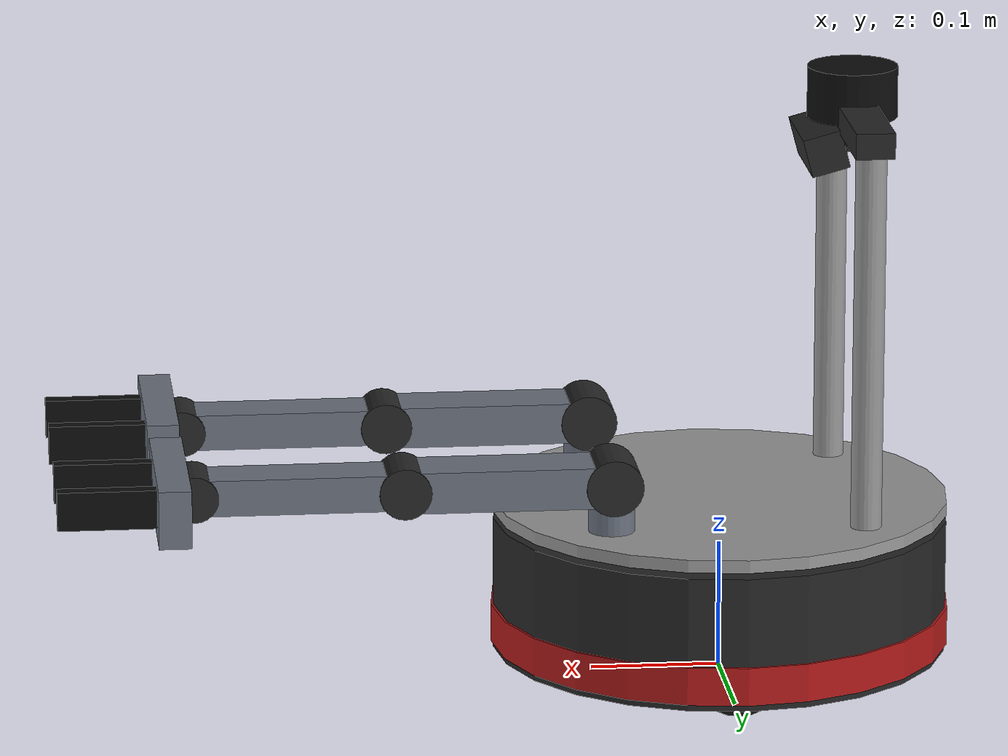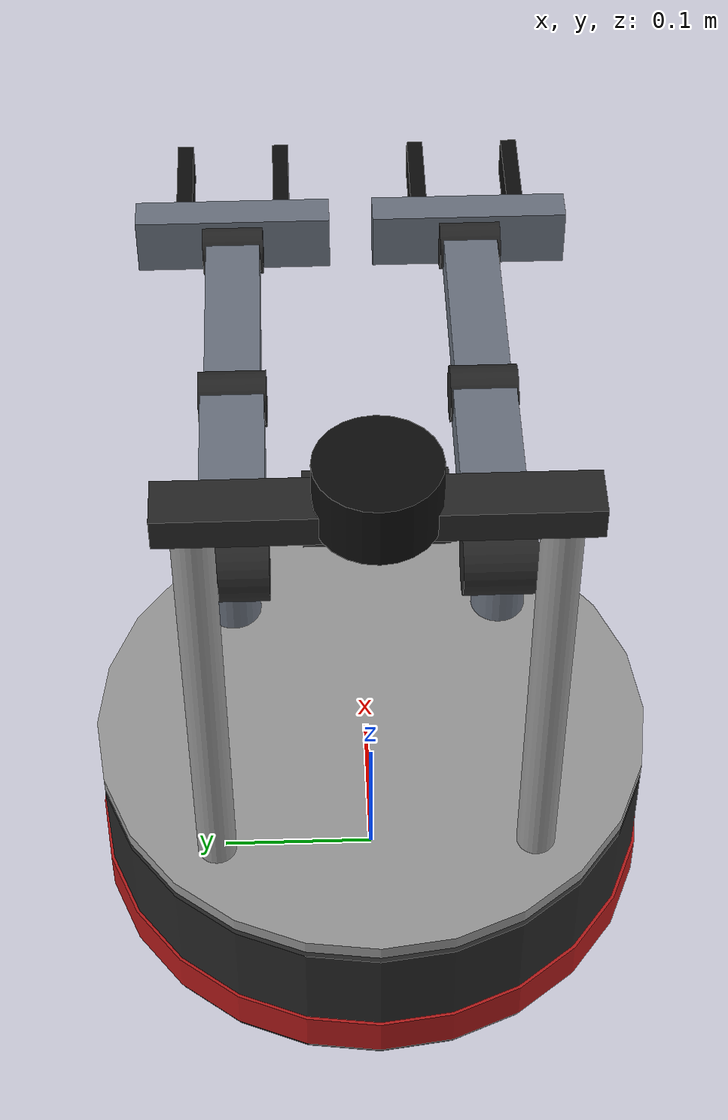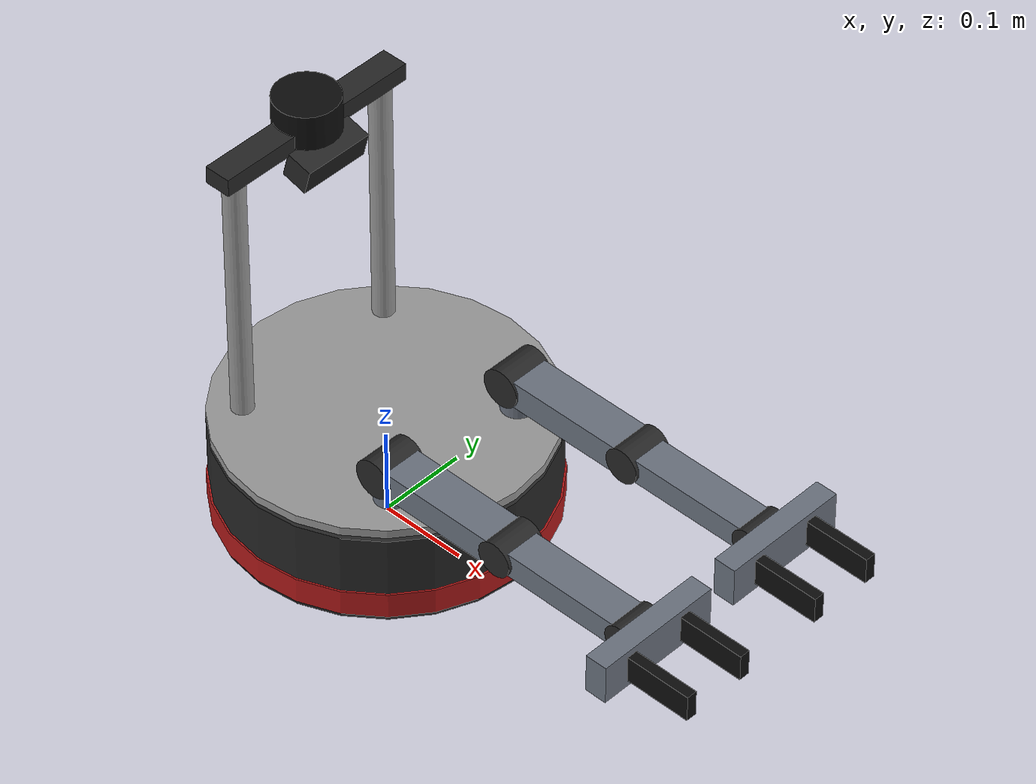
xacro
<?xml version="1.0"?>
<robot name="kobuki_bimanual" xmlns:xacro="http://www.ros.org/wiki/xacro">

  <!-- The compact stationary demo pitches the camera farther down so the
       arm-reachable floor annulus is visible.  The normal mobile demo keeps
       the original 15 degree default. -->
  <xacro:arg name="cam_pitch" default="0.2618"/>

  <!-- ==================== geometry constants ==================== -->
  <xacro:property name="PI"             value="3.14159265358979"/>
  <xacro:property name="base_radius"    value="0.1775"/>
  <xacro:property name="base_body_z0"   value="0.020"/>   <!-- ground clearance -->
  <xacro:property name="base_body_top"  value="0.125"/>
  <xacro:property name="deck_top_z"     value="0.140"/>
  <xacro:property name="wheel_radius"   value="0.038"/>
  <xacro:property name="wheel_width"    value="0.030"/>
  <xacro:property name="wheel_sep"      value="0.230"/>
  <xacro:property name="caster_radius"  value="0.019"/>

  <xacro:property name="arm_mount_x"    value="0.095"/>
  <xacro:property name="arm_mount_y"    value="0.08875"/>
  <xacro:property name="shoulder_z"     value="0.180"/>
  <xacro:property name="L1"             value="0.160"/>
  <xacro:property name="L2"             value="0.160"/>

  <xacro:property name="mast_x"         value="-0.100"/>
  <xacro:property name="lidar_z"        value="0.460"/>
  <xacro:property name="cam_x"          value="-0.075"/>
  <xacro:property name="cam_z"          value="0.420"/>
  <xacro:property name="cam_pitch"      value="$(arg cam_pitch)"/>

  <!-- joint limits -->
  <xacro:property name="yaw_lim"        value="2.618"/>   <!-- ±150 deg -->
  <xacro:property name="pitch_lim"      value="2.0"/>     <!-- ±115 deg -->
  <xacro:property name="finger_travel"  value="0.065"/>

  <!-- ==================== materials ==================== -->
  <material name="dark_grey"><color rgba="0.15 0.15 0.15 1"/></material>
  <material name="light_grey"><color rgba="0.6 0.6 0.6 1"/></material>
  <material name="red_accent"><color rgba="0.7 0.1 0.1 1"/></material>
  <material name="arm_blue"><color rgba="0.42 0.45 0.50 1"/></material>
  <material name="black"><color rgba="0.05 0.05 0.05 1"/></material>

  <!-- ==================== sub-files ==================== -->
  <xacro:include filename="$(find kobuki_bimanual_description)/urdf/base.xacro"/>
  <xacro:include filename="$(find kobuki_bimanual_description)/urdf/mast_sensors.xacro"/>
  <xacro:include filename="$(find kobuki_bimanual_description)/urdf/arm.xacro"/>
  <xacro:include filename="$(find kobuki_bimanual_description)/urdf/ros2_control.xacro"/>
  <xacro:include filename="$(find kobuki_bimanual_description)/urdf/gazebo_plugins.xacro"/>

  <!-- ==================== assembly ==================== -->
  <xacro:kobuki_base/>
  <xacro:mast_sensors/>
  <xacro:arm_4dof side="left"  reflect="1"/>
  <xacro:arm_4dof side="right" reflect="-1"/>
  <xacro:bimanual_ros2_control/>
  <xacro:bimanual_gazebo/>

</robot>

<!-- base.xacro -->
<robot xmlns:xacro="http://www.ros.org/wiki/xacro">

  <!-- Simple cylinder inertia helper -->
  <xacro:macro name="cyl_inertial" params="m r h *origin">
    <inertial>
      <xacro:insert_block name="origin"/>
      <mass value="${m}"/>
      <inertia ixx="${m*(3*r*r+h*h)/12}" iyy="${m*(3*r*r+h*h)/12}"
               izz="${m*r*r/2}" ixy="0" ixz="0" iyz="0"/>
    </inertial>
  </xacro:macro>

  <xacro:macro name="box_inertial" params="m x y z *origin">
    <inertial>
      <xacro:insert_block name="origin"/>
      <mass value="${m}"/>
      <inertia ixx="${m*(y*y+z*z)/12}" iyy="${m*(x*x+z*z)/12}"
               izz="${m*(x*x+y*y)/12}" ixy="0" ixz="0" iyz="0"/>
    </inertial>
  </xacro:macro>

  <xacro:macro name="kobuki_base">

    <!-- base_footprint: ground projection; base_link co-located at ground
         level under the base center so all z values read as height AGL -->
    <link name="base_footprint"/>

    <joint name="base_footprint_joint" type="fixed">
      <parent link="base_footprint"/>
      <child link="base_link"/>
      <origin xyz="0 0 0" rpy="0 0 0"/>
    </joint>

    <link name="base_link">
      <visual>
        <origin xyz="0 0 ${(base_body_z0+base_body_top)/2}"/>
        <geometry><cylinder radius="${base_radius}" length="${base_body_top-base_body_z0}"/></geometry>
        <material name="dark_grey"/>
      </visual>
      <!-- red bumper ring, cosmetic kobuki look -->
      <visual>
        <origin xyz="0 0 ${base_body_z0+0.02}"/>
        <geometry><cylinder radius="${base_radius+0.002}" length="0.03"/></geometry>
        <material name="red_accent"/>
      </visual>
      <collision>
        <origin xyz="0 0 ${(base_body_z0+base_body_top)/2}"/>
        <geometry><cylinder radius="${base_radius}" length="${base_body_top-base_body_z0}"/></geometry>
      </collision>
      <xacro:cyl_inertial m="3.2" r="${base_radius}" h="${base_body_top-base_body_z0}">
        <origin xyz="0 0 ${(base_body_z0+base_body_top)/2}"/>
      </xacro:cyl_inertial>
    </link>

    <!-- arm mounting deck (hex on the real robot, cylinder here) -->
    <link name="deck_link">
      <visual>
        <origin xyz="0 0 -0.005"/>
        <geometry><cylinder radius="${base_radius}" length="0.01"/></geometry>
        <material name="light_grey"/>
      </visual>
      <collision>
        <origin xyz="0 0 -0.005"/>
        <geometry><cylinder radius="${base_radius}" length="0.01"/></geometry>
      </collision>
      <xacro:cyl_inertial m="0.4" r="${base_radius}" h="0.01">
        <origin xyz="0 0 -0.005"/>
      </xacro:cyl_inertial>
    </link>
    <joint name="deck_joint" type="fixed">
      <parent link="base_link"/>
      <child link="deck_link"/>
      <origin xyz="0 0 ${deck_top_z}"/>
    </joint>

    <!-- drive wheels -->
    <xacro:macro name="drive_wheel" params="prefix reflect">
      <link name="${prefix}_wheel_link">
        <visual>
          <origin rpy="${-PI/2} 0 0"/>
          <geometry><cylinder radius="${wheel_radius}" length="${wheel_width}"/></geometry>
          <material name="black"/>
        </visual>
        <collision>
          <origin rpy="${-PI/2} 0 0"/>
          <geometry><cylinder radius="${wheel_radius}" length="${wheel_width}"/></geometry>
        </collision>
        <inertial>
          <mass value="0.12"/>
          <inertia ixx="6e-5" iyy="6e-5" izz="9e-5" ixy="0" ixz="0" iyz="0"/>
        </inertial>
      </link>
      <joint name="${prefix}_wheel_joint" type="continuous">
        <parent link="base_link"/>
        <child link="${prefix}_wheel_link"/>
        <origin xyz="0 ${reflect*wheel_sep/2} ${wheel_radius}"/>
        <axis xyz="0 1 0"/>
      </joint>
      <gazebo reference="${prefix}_wheel_link">
        <mu1>1.0</mu1><mu2>1.0</mu2>
      </gazebo>
    </xacro:macro>
    <xacro:drive_wheel prefix="left"  reflect="1"/>
    <xacro:drive_wheel prefix="right" reflect="-1"/>

    <!-- front / rear casters: frictionless spheres -->
    <xacro:macro name="caster" params="prefix x">
      <link name="${prefix}_caster_link">
        <visual>
          <geometry><sphere radius="${caster_radius}"/></geometry>
          <material name="light_grey"/>
        </visual>
        <collision>
          <geometry><sphere radius="${caster_radius}"/></geometry>
        </collision>
        <inertial>
          <mass value="0.02"/>
          <inertia ixx="3e-6" iyy="3e-6" izz="3e-6" ixy="0" ixz="0" iyz="0"/>
        </inertial>
      </link>
      <joint name="${prefix}_caster_joint" type="fixed">
        <parent link="base_link"/>
        <child link="${prefix}_caster_link"/>
        <origin xyz="${x} 0 ${caster_radius}"/>
      </joint>
      <gazebo reference="${prefix}_caster_link">
        <mu1>0.0</mu1><mu2>0.0</mu2>
      </gazebo>
    </xacro:macro>
    <xacro:caster prefix="front" x="0.15"/>
    <xacro:caster prefix="rear"  x="-0.15"/>

  </xacro:macro>
</robot>

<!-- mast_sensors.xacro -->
<robot xmlns:xacro="http://www.ros.org/wiki/xacro">

  <xacro:macro name="mast_sensors">

    <link name="mast_link">
      <!-- left rod at (-0.099, +0.099): r = sqrt(2)*0.099 = 0.14 m -->
      <visual>
        <origin xyz="0 0.099 ${(lidar_z-0.015-deck_top_z)/2}"/>
        <geometry><cylinder radius="0.012" length="${lidar_z-0.015-deck_top_z}"/></geometry>
        <material name="light_grey"/>
      </visual>
      <!-- right rod at (-0.099, -0.099) -->
      <visual>
        <origin xyz="0 -0.099 ${(lidar_z-0.015-deck_top_z)/2}"/>
        <geometry><cylinder radius="0.012" length="${lidar_z-0.015-deck_top_z}"/></geometry>
        <material name="light_grey"/>
      </visual>
      <!-- crossbar joining the rod tops -->
      <visual>
        <origin xyz="0 0 ${lidar_z-0.015-deck_top_z}"/>
        <geometry><box size="0.03 0.24 0.02"/></geometry>
        <material name="dark_grey"/>
      </visual>
      <!-- camera bracket reaching forward from the crossbar -->
      <visual>
        <origin xyz="${(cam_x-mast_x)/2} 0 ${cam_z-deck_top_z}" rpy="0 1.5708 0"/>
        <geometry><cylinder radius="0.008" length="${cam_x-mast_x}"/></geometry>
        <material name="dark_grey"/>
      </visual>
      <collision>
        <origin xyz="0 0.099 ${(lidar_z-0.015-deck_top_z)/2}"/>
        <geometry><cylinder radius="0.012" length="${lidar_z-0.015-deck_top_z}"/></geometry>
      </collision>
      <collision>
        <origin xyz="0 -0.099 ${(lidar_z-0.015-deck_top_z)/2}"/>
        <geometry><cylinder radius="0.012" length="${lidar_z-0.015-deck_top_z}"/></geometry>
      </collision>
      <collision>
        <origin xyz="0 0 ${lidar_z-0.015-deck_top_z}"/>
        <geometry><box size="0.03 0.24 0.02"/></geometry>
      </collision>
      <inertial>
        <origin xyz="0 0 ${(lidar_z-deck_top_z)/2}"/>
        <mass value="0.45"/>
        <inertia ixx="4e-3" iyy="4e-3" izz="4e-3" ixy="0" ixz="0" iyz="0"/>
      </inertial>
    </link>
    <joint name="mast_joint" type="fixed">
      <parent link="base_link"/>
      <child link="mast_link"/>
      <origin xyz="${mast_x} 0 ${deck_top_z}"/>
    </joint>

    <!-- ============ 2D LiDAR @ 0.46 m ============ -->
    <link name="lidar_link">
      <visual>
        <geometry><cylinder radius="0.035" length="0.04"/></geometry>
        <material name="black"/>
      </visual>
      <collision>
        <geometry><cylinder radius="0.035" length="0.04"/></geometry>
      </collision>
      <inertial>
        <mass value="0.15"/>
        <inertia ixx="1e-4" iyy="1e-4" izz="1e-4" ixy="0" ixz="0" iyz="0"/>
      </inertial>
    </link>
    <joint name="lidar_joint" type="fixed">
      <parent link="base_link"/>
      <child link="lidar_link"/>
      <origin xyz="${mast_x} 0 ${lidar_z}"/>
    </joint>

    <gazebo reference="lidar_link">
      <sensor name="lidar" type="gpu_lidar">
        <topic>scan</topic>
        <gz_frame_id>lidar_link</gz_frame_id>
        <update_rate>10</update_rate>
        <lidar>
          <scan>
            <horizontal>
              <samples>360</samples>
              <resolution>1</resolution>
              <min_angle>${-PI}</min_angle>
              <max_angle>${PI}</max_angle>
            </horizontal>
          </scan>
          <range>
            <min>0.12</min>
            <max>8.0</max>
            <resolution>0.01</resolution>
          </range>
        </lidar>
        <always_on>true</always_on>
        <visualize>false</visualize>
      </sensor>
    </gazebo>

    <!-- ============ RGB camera @ 0.42 m, 15 deg down ============ -->
    <link name="camera_link">
      <visual>
        <geometry><box size="0.03 0.08 0.03"/></geometry>
        <material name="dark_grey"/>
      </visual>
      <collision>
        <geometry><box size="0.03 0.08 0.03"/></geometry>
      </collision>
      <inertial>
        <mass value="0.08"/>
        <inertia ixx="5e-5" iyy="5e-5" izz="5e-5" ixy="0" ixz="0" iyz="0"/>
      </inertial>
    </link>
    <joint name="camera_joint" type="fixed">
      <parent link="base_link"/>
      <child link="camera_link"/>
      <origin xyz="${cam_x} 0 ${cam_z}" rpy="0 ${cam_pitch} 0"/>
    </joint>

    <gazebo reference="camera_link">
      <sensor name="camera" type="camera">
        <topic>camera</topic>
        <gz_frame_id>camera_link</gz_frame_id>
        <update_rate>15</update_rate>
        <camera>
          <camera_info_topic>camera_info</camera_info_topic>
          <horizontal_fov>1.204</horizontal_fov> <!-- 69 deg -->
          <image>
            <width>640</width>
            <height>480</height>
            <format>R8G8B8</format>
          </image>
          <clip><near>0.05</near><far>15.0</far></clip>
        </camera>
        <always_on>true</always_on>
        <visualize>false</visualize>
      </sensor>
    </gazebo>

  </xacro:macro>
</robot>

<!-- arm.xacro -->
<robot xmlns:xacro="http://www.ros.org/wiki/xacro">
  <xacro:macro name="arm_4dof" params="side reflect">

    <!-- riser / shoulder yaw -->
    <link name="${side}_shoulder_link">
      <visual>
        <origin xyz="0 0 0.02"/>
        <geometry><cylinder radius="0.018" length="0.04"/></geometry>
        <material name="arm_blue"/>
      </visual>
      <collision>
        <origin xyz="0 0 0.02"/>
        <geometry><cylinder radius="0.018" length="0.04"/></geometry>
      </collision>
      <xacro:cyl_inertial m="0.12" r="0.018" h="0.04">
        <origin xyz="0 0 0.02"/>
      </xacro:cyl_inertial>
    </link>
    <joint name="${side}_j1" type="revolute">
      <parent link="base_link"/>
      <child link="${side}_shoulder_link"/>
      <origin xyz="${arm_mount_x} ${reflect*arm_mount_y} ${deck_top_z}"/>
      <axis xyz="0 0 1"/>
      <limit lower="${-yaw_lim}" upper="${yaw_lim}" effort="6.0" velocity="3.0"/>
      <dynamics damping="0.3" friction="0.05"/>
    </joint>

    <!-- upper arm: J2 at shoulder_z (0.18 AGL) -->
    <link name="${side}_upper_arm_link">
      <visual>
        <origin xyz="0 0 0" rpy="${PI/2} 0 0"/>
        <geometry><cylinder radius="0.022" length="0.05"/></geometry>
        <material name="dark_grey"/>
      </visual>
      <visual>
        <origin xyz="${L1/2} 0 0"/>
        <geometry><box size="${L1} 0.045 0.032"/></geometry>
        <material name="arm_blue"/>
      </visual>
      <collision>
        <origin xyz="${L1/2} 0 0"/>
        <geometry><box size="${L1} 0.045 0.032"/></geometry>
      </collision>
      <xacro:box_inertial m="0.16" x="${L1}" y="0.045" z="0.032">
        <origin xyz="${L1/2} 0 0"/>
      </xacro:box_inertial>
    </link>
    <joint name="${side}_j2" type="revolute">
      <parent link="${side}_shoulder_link"/>
      <child link="${side}_upper_arm_link"/>
      <origin xyz="0 0 ${shoulder_z - deck_top_z}"/>
      <axis xyz="0 1 0"/>
      <limit lower="${-pitch_lim}" upper="${pitch_lim}" effort="6.0" velocity="3.0"/>
      <dynamics damping="0.3" friction="0.05"/>
    </joint>

    <!-- forearm -->
    <link name="${side}_forearm_link">
      <visual>
        <origin xyz="0 0 0" rpy="${PI/2} 0 0"/>
        <geometry><cylinder radius="0.02" length="0.048"/></geometry>
        <material name="dark_grey"/>
      </visual>
      <visual>
        <origin xyz="${L2/2} 0 0"/>
        <geometry><box size="${L2} 0.04 0.028"/></geometry>
        <material name="arm_blue"/>
      </visual>
      <collision>
        <origin xyz="${L2/2} 0 0"/>
        <geometry><box size="${L2} 0.04 0.028"/></geometry>
      </collision>
      <xacro:box_inertial m="0.15" x="${L2}" y="0.04" z="0.028">
        <origin xyz="${L2/2} 0 0"/>
      </xacro:box_inertial>
    </link>
    <joint name="${side}_j3" type="revolute">
      <parent link="${side}_upper_arm_link"/>
      <child link="${side}_forearm_link"/>
      <origin xyz="${L1} 0 0"/>
      <axis xyz="0 1 0"/>
      <limit lower="${-pitch_lim}" upper="${pitch_lim}" effort="6.0" velocity="3.0"/>
      <dynamics damping="0.3" friction="0.05"/>
    </joint>

    <!-- wrist + palm -->
    <link name="${side}_palm_link">
      <visual>
        <origin xyz="0 0 0" rpy="${PI/2} 0 0"/>
        <geometry><cylinder radius="0.018" length="0.045"/></geometry>
        <material name="dark_grey"/>
      </visual>
      <visual>
        <origin xyz="0.0175 0 0"/>
        <geometry><box size="0.025 0.145 0.045"/></geometry>
        <material name="arm_blue"/>
      </visual>
      <collision>
        <origin xyz="0.0175 0 0"/>
        <geometry><box size="0.025 0.145 0.045"/></geometry>
      </collision>
      <xacro:box_inertial m="0.10" x="0.025" y="0.145" z="0.045">
        <origin xyz="0.0175 0 0"/>
      </xacro:box_inertial>
    </link>
    <joint name="${side}_j4" type="revolute">
      <parent link="${side}_forearm_link"/>
      <child link="${side}_palm_link"/>
      <origin xyz="${L2} 0 0"/>
      <axis xyz="0 1 0"/>
      <limit lower="${-pitch_lim}" upper="${pitch_lim}" effort="4.0" velocity="3.0"/>
      <dynamics damping="0.3" friction="0.05"/>
    </joint>

    <!-- fingers: prismatic, positive = open; padded high-friction jaws -->
    <xacro:macro name="finger" params="side fprefix faxis">
      <link name="${side}_finger_${fprefix}_link">
        <visual>
          <origin xyz="0.0375 0 0"/>
          <geometry><box size="0.075 0.012 0.03"/></geometry>
          <material name="black"/>
        </visual>
        <collision>
          <origin xyz="0.0375 0 0"/>
          <geometry><box size="0.075 0.012 0.03"/></geometry>
        </collision>
        <inertial>
          <mass value="0.02"/>
          <inertia ixx="8e-6" iyy="8e-6" izz="8e-6" ixy="0" ixz="0" iyz="0"/>
        </inertial>
      </link>
      <joint name="${side}_finger_${fprefix}_joint" type="prismatic">
        <parent link="${side}_palm_link"/>
        <child link="${side}_finger_${fprefix}_link"/>
        <origin xyz="0.03 0 0"/>
        <axis xyz="0 ${faxis} 0"/>
        <limit lower="0.008" upper="${finger_travel}" effort="30.0" velocity="0.2"/>
        <dynamics damping="0.5" friction="0.1"/>
      </joint>
      <gazebo reference="${side}_finger_${fprefix}_link">
        <mu1>1.8</mu1><mu2>1.8</mu2>
      </gazebo>
    </xacro:macro>
    <xacro:finger side="${side}" fprefix="l" faxis="1"/>
    <xacro:finger side="${side}" fprefix="r" faxis="-1"/>

  </xacro:macro>
</robot>
